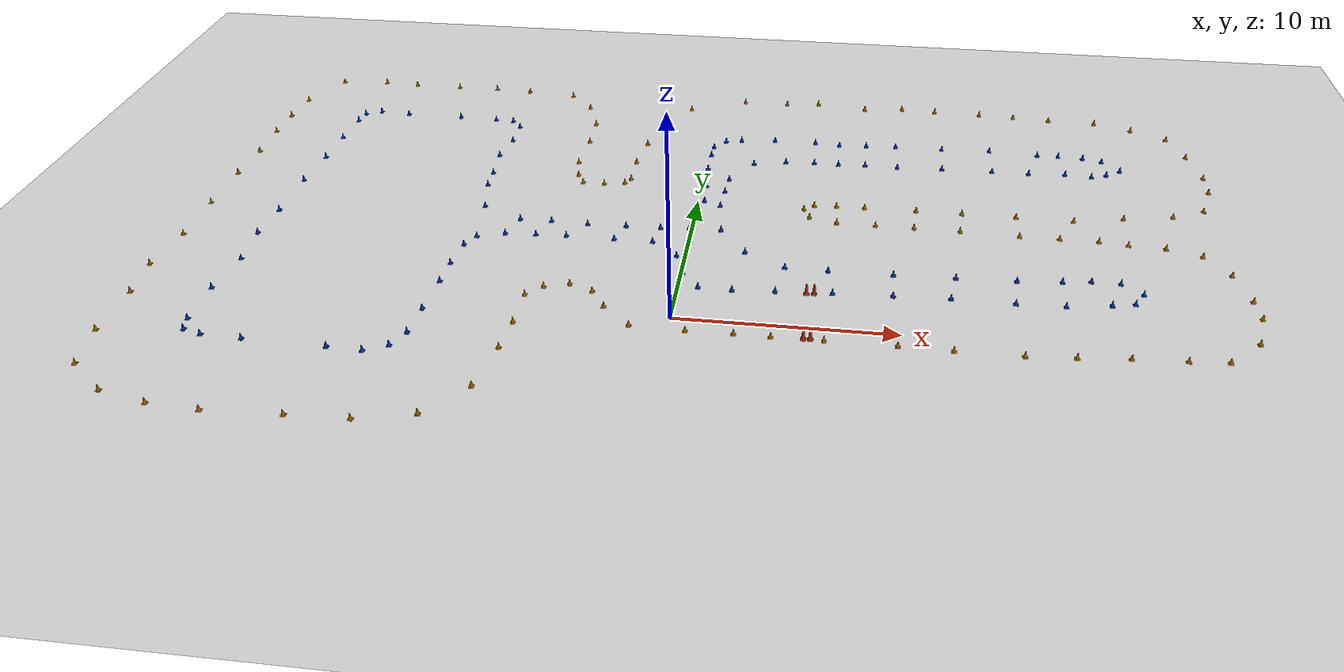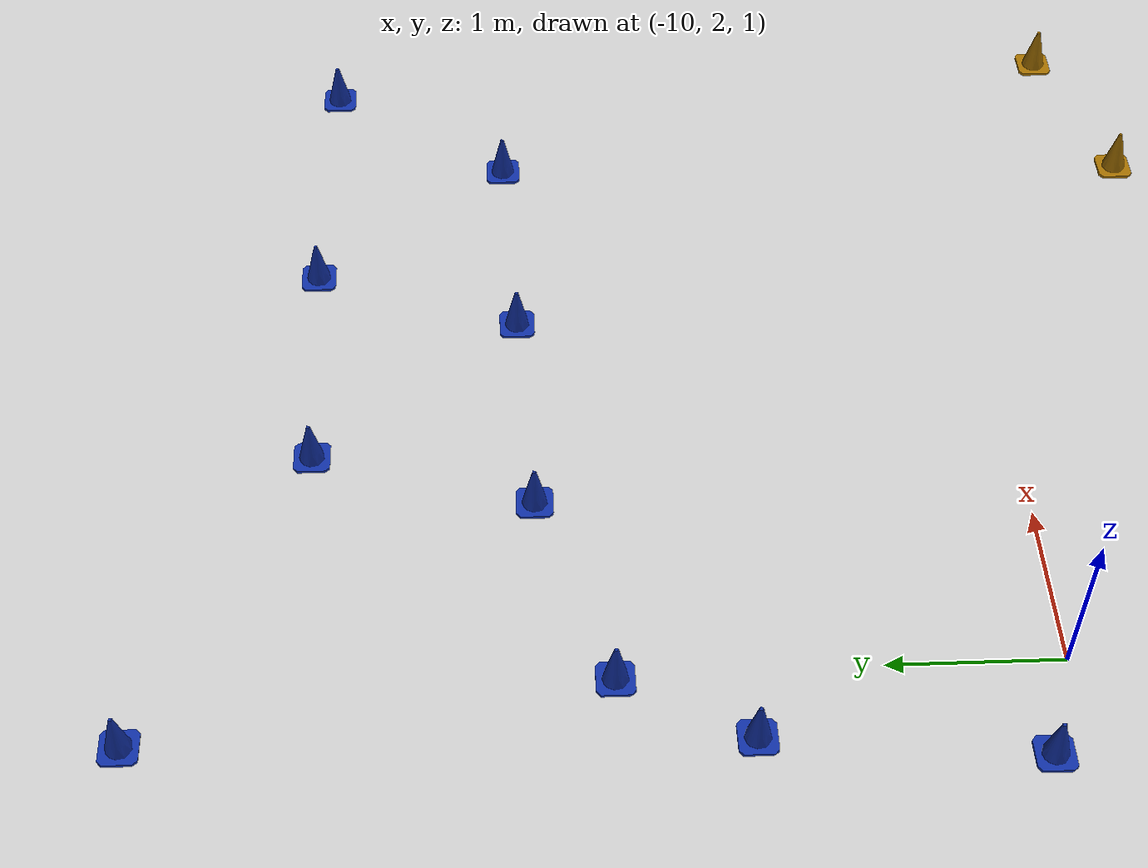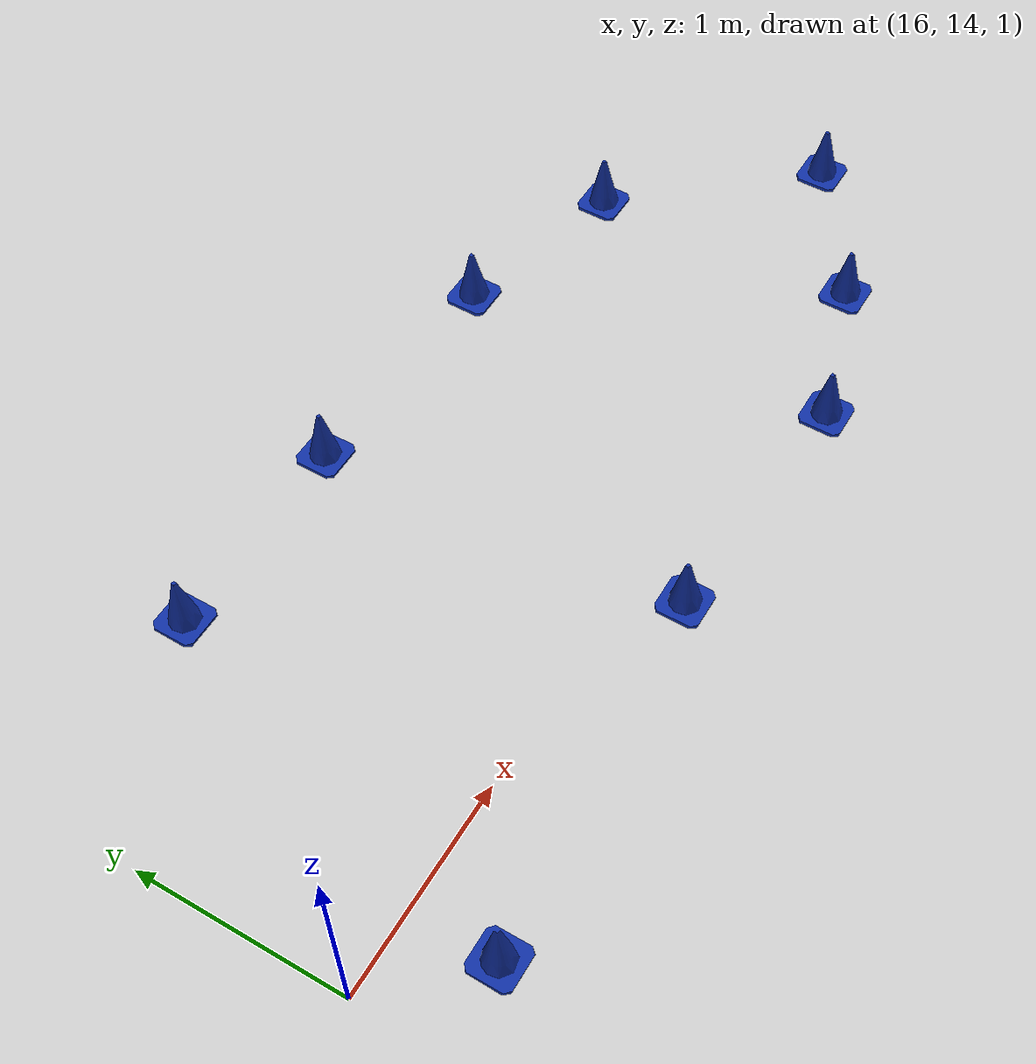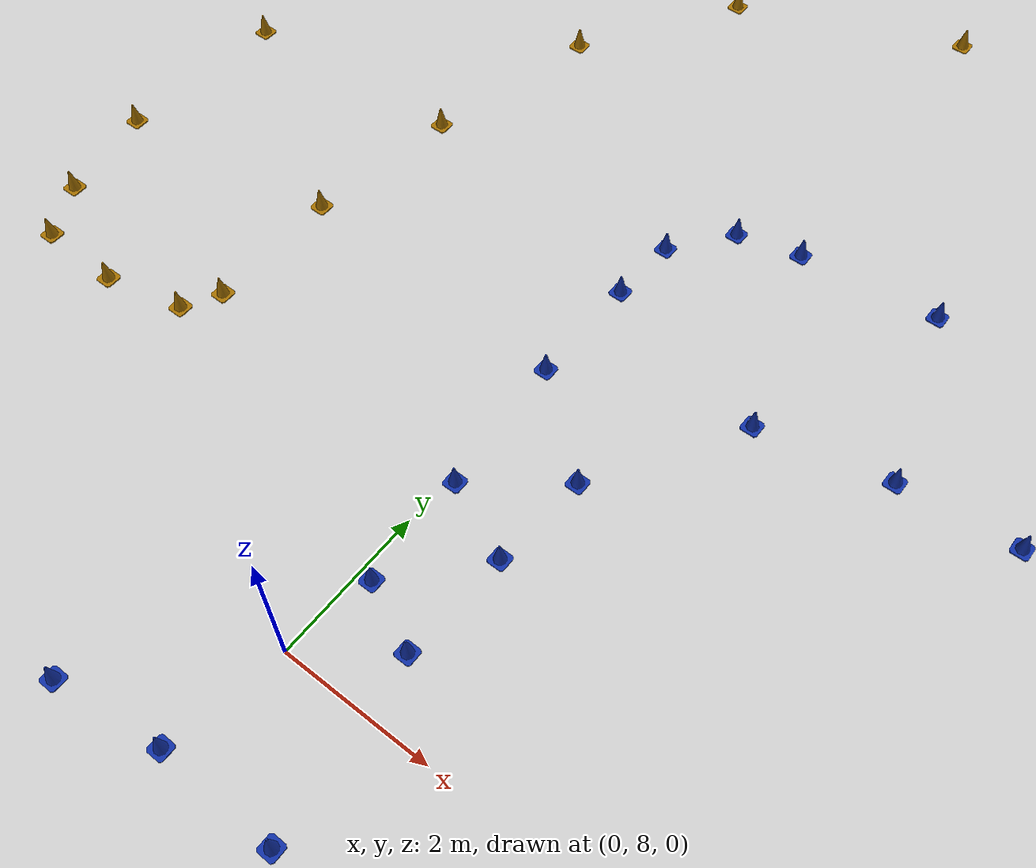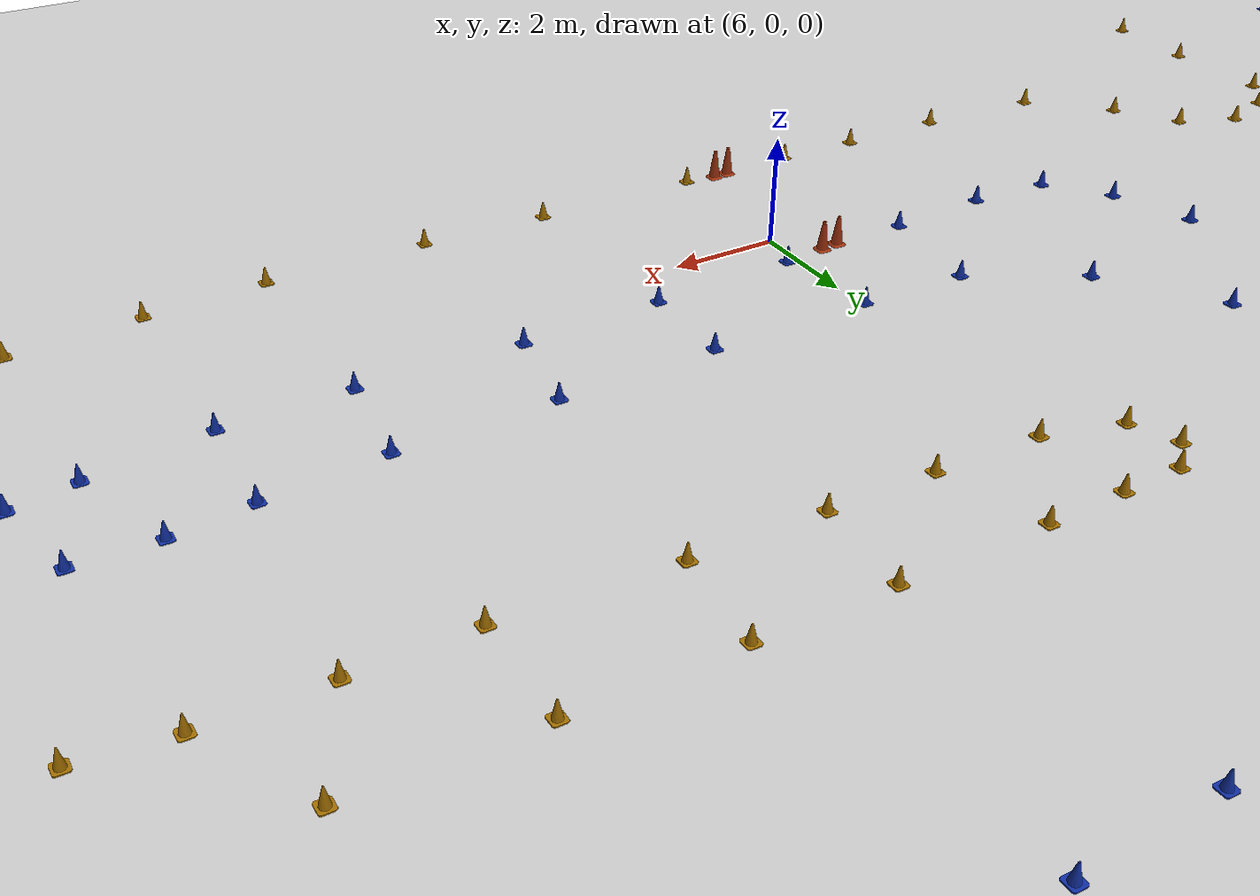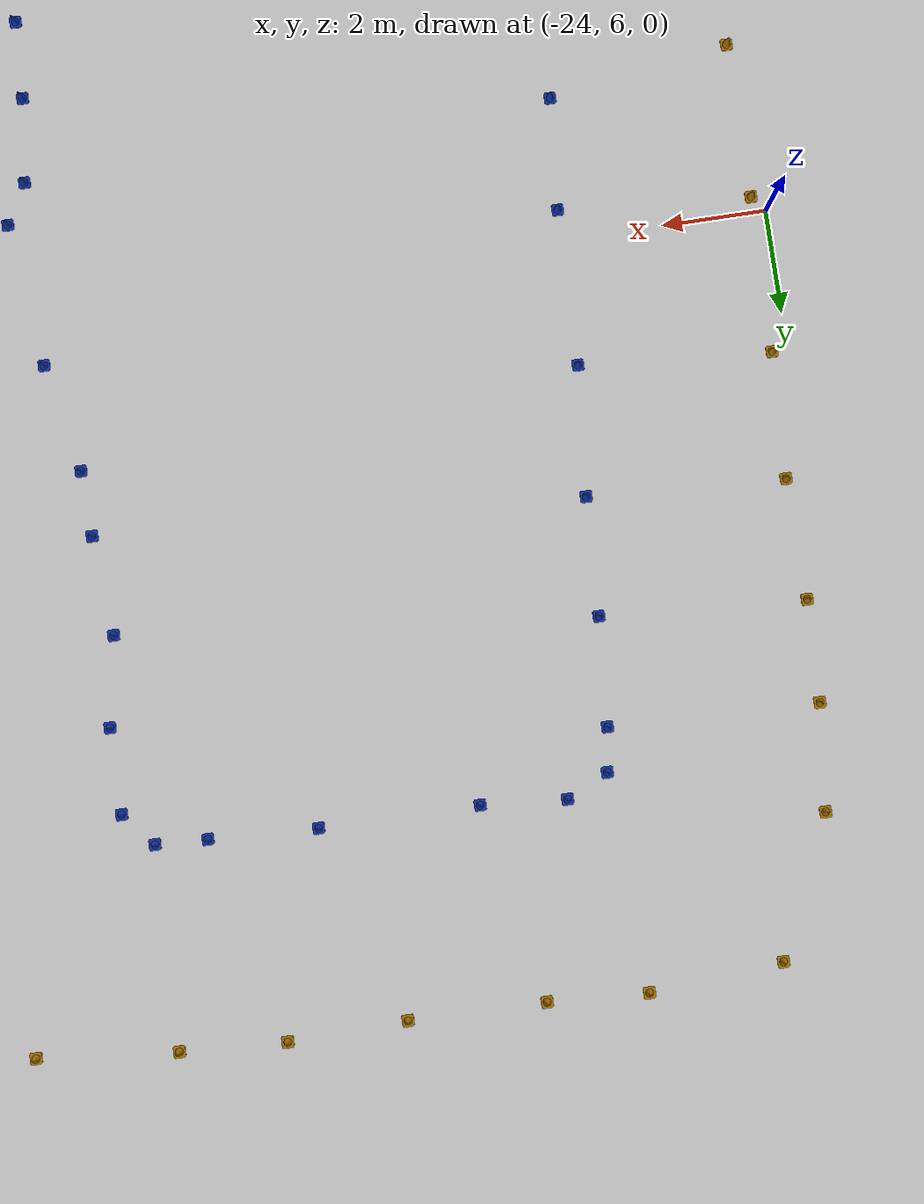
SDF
<sdf version='1.6'>
  <world name='garden_light'>
    <gui fullscreen='0'>
      <camera name='user_camera'>
        <pose frame=''>-40 40 20 0 0.667643 -1</pose>
        <view_controller>orbit</view_controller>
        <projection_type>perspective</projection_type>
      </camera>
    </gui>

    <!-- WORLD SETTINGS -->
    <scene>
      <ambient>1.0 1.0 1.0 1.0</ambient>
      <shadows>false</shadows>
    </scene>

    <spherical_coordinates>
      <heading_deg>180</heading_deg>

      <!-- Appleton Tower coordinates -->
      <latitude_deg>-27.69056</latitude_deg>
      <longitude_deg>152.65461</longitude_deg>
    </spherical_coordinates>

    <light name='sun' type='directional'>
      <cast_shadows>1</cast_shadows>
      <pose frame=''>0 0 10 0 -0 0</pose>
      <diffuse>0.8 0.8 0.8 1</diffuse>
      <specular>0.1 0.1 0.1 1</specular>
      <attenuation>
        <range>1000</range>
        <constant>0.9</constant>
        <linear>0.01</linear>
        <quadratic>0.001</quadratic>
      </attenuation>
      <direction>-0.5 0.5 -1</direction>
    </light>

    <!-- MODELS -->
    <include>
      <uri>model://ground_plane</uri>
      <pose>0.0 0.0 0.0 0 0 0</pose>
    </include>

    <include>
      <uri>model://garden_light</uri>
      <pose>0 0 0.5 0 0 0</pose>
    </include>

  </world>
</sdf>

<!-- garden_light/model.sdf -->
<sdf version='1.6'>
  <model name='track'>

    <include>
      <pose>6.957009191006661 1.7661455772327097 0.15 0 0 0</pose>
      <uri>model://blue_cone</uri>
      <name>blue_cone_0</name>

      <covariance x="0.000196" y="0.000196" xy="0.0"/>

    </include>

    <include>
      <pose>9.59576527314685 1.8942519368069928 0.15 0 0 0</pose>
      <uri>model://blue_cone</uri>
      <name>blue_cone_1</name>

      <covariance x="0.000196" y="0.000196" xy="0.0"/>

    </include>

    <include>
      <pose>12.10823694949823 2.0093814993597223 0.15 0 0 0</pose>
      <uri>model://blue_cone</uri>
      <name>blue_cone_2</name>

      <covariance x="0.000196" y="0.000196" xy="0.0"/>

    </include>

    <include>
      <pose>14.883948178031549 1.9565085719230644 0.15 0 0 0</pose>
      <uri>model://blue_cone</uri>
      <name>blue_cone_3</name>

      <covariance x="0.000196" y="0.000196" xy="0.0"/>

    </include>

    <include>
      <pose>17.021855202365856 2.015796742172749 0.15 0 0 0</pose>
      <uri>model://blue_cone</uri>
      <name>blue_cone_4</name>

      <covariance x="0.000196" y="0.000196" xy="0.0"/>

    </include>

    <include>
      <pose>19.008038251837696 2.3305962011538157 0.15 0 0 0</pose>
      <uri>model://blue_cone</uri>
      <name>blue_cone_5</name>

      <covariance x="0.000196" y="0.000196" xy="0.0"/>

    </include>

    <include>
      <pose>20.029941897847724 2.534842764762044 0.15 0 0 0</pose>
      <uri>model://blue_cone</uri>
      <name>blue_cone_6</name>

      <covariance x="0.000196" y="0.000196" xy="0.0"/>

    </include>

    <include>
      <pose>20.50598591377573 3.328676580011245 0.15 0 0 0</pose>
      <uri>model://blue_cone</uri>
      <name>blue_cone_7</name>

      <covariance x="0.000196" y="0.000196" xy="0.0"/>

    </include>

    <include>
      <pose>19.633702195632488 4.0618799751194254 0.15 0 0 0</pose>
      <uri>model://blue_cone</uri>
      <name>blue_cone_8</name>

      <covariance x="0.000196" y="0.000196" xy="0.0"/>

    </include>

    <include>
      <pose>18.35423811537148 4.087877695840995 0.15 0 0 0</pose>
      <uri>model://blue_cone</uri>
      <name>blue_cone_9</name>

      <covariance x="0.000196" y="0.000196" xy="0.0"/>

    </include>

    <include>
      <pose>17.07616909674042 3.913780944217241 0.15 0 0 0</pose>
      <uri>model://blue_cone</uri>
      <name>blue_cone_10</name>

      <covariance x="0.000196" y="0.000196" xy="0.0"/>

    </include>

    <include>
      <pose>15.072282970355577 3.719336407068008 0.15 0 0 0</pose>
      <uri>model://blue_cone</uri>
      <name>blue_cone_11</name>

      <covariance x="0.000196" y="0.000196" xy="0.0"/>

    </include>

    <include>
      <pose>12.385046646757152 3.643453732803824 0.15 0 0 0</pose>
      <uri>model://blue_cone</uri>
      <name>blue_cone_12</name>

      <covariance x="0.000196" y="0.000196" xy="0.0"/>

    </include>

    <include>
      <pose>9.617586998319249 3.552511231982513 0.15 0 0 0</pose>
      <uri>model://blue_cone</uri>
      <name>blue_cone_13</name>

      <covariance x="0.000196" y="0.000196" xy="0.0"/>

    </include>

    <include>
      <pose>6.699098966225194 3.519471497552272 0.15 0 0 0</pose>
      <uri>model://blue_cone</uri>
      <name>blue_cone_14</name>

      <covariance x="0.000196" y="0.000196" xy="0.0"/>

    </include>

    <include>
      <pose>4.739935329515152 3.555067345863401 0.15 0 0 0</pose>
      <uri>model://blue_cone</uri>
      <name>blue_cone_15</name>

      <covariance x="0.000196" y="0.000196" xy="0.0"/>

    </include>

    <include>
      <pose>2.838612925177313 4.611332770945694 0.15 0 0 0</pose>
      <uri>model://blue_cone</uri>
      <name>blue_cone_16</name>

      <covariance x="0.000196" y="0.000196" xy="0.0"/>

    </include>

    <include>
      <pose>1.5352152073704977 6.384805622912811 0.15 0 0 0</pose>
      <uri>model://blue_cone</uri>
      <name>blue_cone_17</name>

      <covariance x="0.000196" y="0.000196" xy="0.0"/>

    </include>

    <include>
      <pose>1.2575741186359668 8.611594736145097 0.15 0 0 0</pose>
      <uri>model://blue_cone</uri>
      <name>blue_cone_18</name>

      <covariance x="0.000196" y="0.000196" xy="0.0"/>

    </include>

    <include>
      <pose>1.3336621795997932 10.000720718687148 0.15 0 0 0</pose>
      <uri>model://blue_cone</uri>
      <name>blue_cone_19</name>

      <covariance x="0.000196" y="0.000196" xy="0.0"/>

    </include>

    <include>
      <pose>1.4217702344604852 11.236785568586727 0.15 0 0 0</pose>
      <uri>model://blue_cone</uri>
      <name>blue_cone_20</name>

      <covariance x="0.000196" y="0.000196" xy="0.0"/>

    </include>

    <include>
      <pose>2.525308431112676 13.027874470897508 0.15 0 0 0</pose>
      <uri>model://blue_cone</uri>
      <name>blue_cone_21</name>

      <covariance x="0.000196" y="0.000196" xy="0.0"/>

    </include>

    <include>
      <pose>4.149379203027716 13.372368064768851 0.15 0 0 0</pose>
      <uri>model://blue_cone</uri>
      <name>blue_cone_22</name>

      <covariance x="0.000196" y="0.000196" xy="0.0"/>

    </include>

    <include>
      <pose>5.611378833811353 13.487689052732511 0.15 0 0 0</pose>
      <uri>model://blue_cone</uri>
      <name>blue_cone_23</name>

      <covariance x="0.000196" y="0.000196" xy="0.0"/>

    </include>

    <include>
      <pose>6.85491876464856 13.447261364624788 0.15 0 0 0</pose>
      <uri>model://blue_cone</uri>
      <name>blue_cone_24</name>

      <covariance x="0.000196" y="0.000196" xy="0.0"/>

    </include>

    <include>
      <pose>8.223066788830103 13.580509514855972 0.15 0 0 0</pose>
      <uri>model://blue_cone</uri>
      <name>blue_cone_25</name>

      <covariance x="0.000196" y="0.000196" xy="0.0"/>

    </include>

    <include>
      <pose>9.869546792987837 13.510953324735198 0.15 0 0 0</pose>
      <uri>model://blue_cone</uri>
      <name>blue_cone_26</name>

      <covariance x="0.000196" y="0.000196" xy="0.0"/>

    </include>

    <include>
      <pose>12.143084551935544 13.63592700091243 0.15 0 0 0</pose>
      <uri>model://blue_cone</uri>
      <name>blue_cone_27</name>

      <covariance x="0.000196" y="0.000196" xy="0.0"/>

    </include>

    <include>
      <pose>14.677592003070933 13.672619515889892 0.15 0 0 0</pose>
      <uri>model://blue_cone</uri>
      <name>blue_cone_28</name>

      <covariance x="0.000196" y="0.000196" xy="0.0"/>

    </include>

    <include>
      <pose>16.516562728334918 13.679898763276771 0.15 0 0 0</pose>
      <uri>model://blue_cone</uri>
      <name>blue_cone_29</name>

      <covariance x="0.000196" y="0.000196" xy="0.0"/>

    </include>

    <include>
      <pose>18.354808469775385 13.836088354589522 0.15 0 0 0</pose>
      <uri>model://blue_cone</uri>
      <name>blue_cone_30</name>

      <covariance x="0.000196" y="0.000196" xy="0.0"/>

    </include>

    <include>
      <pose>19.657880755772908 13.753010164760347 0.15 0 0 0</pose>
      <uri>model://blue_cone</uri>
      <name>blue_cone_31</name>

      <covariance x="0.000196" y="0.000196" xy="0.0"/>

    </include>

    <include>
      <pose>20.42339581099055 14.00928813790043 0.15 0 0 0</pose>
      <uri>model://blue_cone</uri>
      <name>blue_cone_32</name>

      <covariance x="0.000196" y="0.000196" xy="0.0"/>

    </include>

    <include>
      <pose>21.166702925964465 14.495073932137622 0.15 0 0 0</pose>
      <uri>model://blue_cone</uri>
      <name>blue_cone_33</name>

      <covariance x="0.000196" y="0.000196" xy="0.0"/>

    </include>

    <include>
      <pose>20.37631535168097 15.411937071497366 0.15 0 0 0</pose>
      <uri>model://blue_cone</uri>
      <name>blue_cone_34</name>

      <covariance x="0.000196" y="0.000196" xy="0.0"/>

    </include>

    <include>
      <pose>19.453919607671185 15.651890691817044 0.15 0 0 0</pose>
      <uri>model://blue_cone</uri>
      <name>blue_cone_35</name>

      <covariance x="0.000196" y="0.000196" xy="0.0"/>

    </include>

    <include>
      <pose>18.222142223091478 15.714669141352497 0.15 0 0 0</pose>
      <uri>model://blue_cone</uri>
      <name>blue_cone_36</name>

      <covariance x="0.000196" y="0.000196" xy="0.0"/>

    </include>

    <include>
      <pose>17.144748566206665 15.720409028194492 0.15 0 0 0</pose>
      <uri>model://blue_cone</uri>
      <name>blue_cone_37</name>

      <covariance x="0.000196" y="0.000196" xy="0.0"/>

    </include>

    <include>
      <pose>14.68459750361897 15.874685292027106 0.15 0 0 0</pose>
      <uri>model://blue_cone</uri>
      <name>blue_cone_38</name>

      <covariance x="0.000196" y="0.000196" xy="0.0"/>

    </include>

    <include>
      <pose>12.217423868785088 15.756740257379594 0.15 0 0 0</pose>
      <uri>model://blue_cone</uri>
      <name>blue_cone_39</name>

      <covariance x="0.000196" y="0.000196" xy="0.0"/>

    </include>

    <include>
      <pose>9.797473615214669 15.751449011578051 0.15 0 0 0</pose>
      <uri>model://blue_cone</uri>
      <name>blue_cone_40</name>

      <covariance x="0.000196" y="0.000196" xy="0.0"/>

    </include>

    <include>
      <pose>8.254531661002847 15.672351546216303 0.15 0 0 0</pose>
      <uri>model://blue_cone</uri>
      <name>blue_cone_41</name>

      <covariance x="0.000196" y="0.000196" xy="0.0"/>

    </include>

    <include>
      <pose>6.842001169898641 15.556483223195558 0.15 0 0 0</pose>
      <uri>model://blue_cone</uri>
      <name>blue_cone_42</name>

      <covariance x="0.000196" y="0.000196" xy="0.0"/>

    </include>

    <include>
      <pose>5.572730963168121 15.669896521206985 0.15 0 0 0</pose>
      <uri>model://blue_cone</uri>
      <name>blue_cone_43</name>

      <covariance x="0.000196" y="0.000196" xy="0.0"/>

    </include>

    <include>
      <pose>3.4265173292726514 15.666571111015289 0.15 0 0 0</pose>
      <uri>model://blue_cone</uri>
      <name>blue_cone_44</name>

      <covariance x="0.000196" y="0.000196" xy="0.0"/>

    </include>

    <include>
      <pose>1.6445775315068127 15.484455541310265 0.15 0 0 0</pose>
      <uri>model://blue_cone</uri>
      <name>blue_cone_45</name>

      <covariance x="0.000196" y="0.000196" xy="0.0"/>

    </include>

    <include>
      <pose>0.838205046554946 15.28368838495713 0.15 0 0 0</pose>
      <uri>model://blue_cone</uri>
      <name>blue_cone_46</name>

      <covariance x="0.000196" y="0.000196" xy="0.0"/>

    </include>

    <include>
      <pose>0.2750412092852636 14.551948233429387 0.15 0 0 0</pose>
      <uri>model://blue_cone</uri>
      <name>blue_cone_47</name>

      <covariance x="0.000196" y="0.000196" xy="0.0"/>

    </include>

    <include>
      <pose>0.2319583685071746 13.666506107556694 0.15 0 0 0</pose>
      <uri>model://blue_cone</uri>
      <name>blue_cone_48</name>

      <covariance x="0.000196" y="0.000196" xy="0.0"/>

    </include>

    <include>
      <pose>0.2233641112741153 12.216913349119617 0.15 0 0 0</pose>
      <uri>model://blue_cone</uri>
      <name>blue_cone_49</name>

      <covariance x="0.000196" y="0.000196" xy="0.0"/>

    </include>

    <include>
      <pose>0.3589226167892754 10.426101545271525 0.15 0 0 0</pose>
      <uri>model://blue_cone</uri>
      <name>blue_cone_50</name>

      <covariance x="0.000196" y="0.000196" xy="0.0"/>

    </include>

    <include>
      <pose>0.4316124026531422 8.987971658845172 0.15 0 0 0</pose>
      <uri>model://blue_cone</uri>
      <name>blue_cone_51</name>

      <covariance x="0.00019832" y="0.00019832" xy="0.0"/>

    </include>

    <include>
      <pose>0.0235420670018706 6.406261628392431 0.15 0 0 0</pose>
      <uri>model://blue_cone</uri>
      <name>blue_cone_52</name>

      <covariance x="0.000196" y="0.000196" xy="0.0"/>

    </include>

    <include>
      <pose>-1.3416683915724636 6.234179963474316 0.15 0 0 0</pose>
      <uri>model://blue_cone</uri>
      <name>blue_cone_53</name>

      <covariance x="0.000196" y="0.000196" xy="0.0"/>

    </include>

    <include>
      <pose>-2.995965456715407 6.197457997973169 0.15 0 0 0</pose>
      <uri>model://blue_cone</uri>
      <name>blue_cone_54</name>

      <covariance x="0.000196" y="0.000196" xy="0.0"/>

    </include>

    <include>
      <pose>-4.844396158501869 6.142427735130398 0.15 0 0 0</pose>
      <uri>model://blue_cone</uri>
      <name>blue_cone_55</name>

      <covariance x="0.000196" y="0.000196" xy="0.0"/>

    </include>

    <include>
      <pose>-6.618311854478021 6.221757153911208 0.15 0 0 0</pose>
      <uri>model://blue_cone</uri>
      <name>blue_cone_56</name>

      <covariance x="0.000196" y="0.000196" xy="0.0"/>

    </include>

    <include>
      <pose>-8.146852940266232 6.203310473409385 0.15 0 0 0</pose>
      <uri>model://blue_cone</uri>
      <name>blue_cone_57</name>

      <covariance x="0.000196" y="0.000196" xy="0.0"/>

    </include>

    <include>
      <pose>-10.144487425776084 7.167470622285265 0.15 0 0 0</pose>
      <uri>model://blue_cone</uri>
      <name>blue_cone_58</name>

      <covariance x="0.000196" y="0.000196" xy="0.0"/>

    </include>

    <include>
      <pose>-10.57348709849624 9.226502131527395 0.15 0 0 0</pose>
      <uri>model://blue_cone</uri>
      <name>blue_cone_59</name>

      <covariance x="0.000196" y="0.000196" xy="0.0"/>

    </include>

    <include>
      <pose>-10.622522287672748 10.452275541360423 0.15 0 0 0</pose>
      <uri>model://blue_cone</uri>
      <name>blue_cone_60</name>

      <covariance x="0.000196" y="0.000196" xy="0.0"/>

    </include>

    <include>
      <pose>-10.781943774311744 12.323379211317482 0.15 0 0 0</pose>
      <uri>model://blue_cone</uri>
      <name>blue_cone_61</name>

      <covariance x="0.000196" y="0.000196" xy="0.0"/>

    </include>

    <include>
      <pose>-10.499182715070056 13.993663864803851 0.15 0 0 0</pose>
      <uri>model://blue_cone</uri>
      <name>blue_cone_62</name>

      <covariance x="0.000196" y="0.000196" xy="0.0"/>

    </include>

    <include>
      <pose>-10.508233823005853 15.590654049595411 0.15 0 0 0</pose>
      <uri>model://blue_cone</uri>
      <name>blue_cone_63</name>

      <covariance x="0.000196" y="0.000196" xy="0.0"/>

    </include>

    <include>
      <pose>-11.0397291486385 16.213409397641797 0.15 0 0 0</pose>
      <uri>model://blue_cone</uri>
      <name>blue_cone_64</name>

      <covariance x="0.000196" y="0.000196" xy="0.0"/>

    </include>

    <include>
      <pose>-12.007464257167644 16.257419929705126 0.15 0 0 0</pose>
      <uri>model://blue_cone</uri>
      <name>blue_cone_65</name>

      <covariance x="0.000196" y="0.000196" xy="0.0"/>

    </include>

    <include>
      <pose>-14.031982183612037 16.346442248018647 0.15 0 0 0</pose>
      <uri>model://blue_cone</uri>
      <name>blue_cone_66</name>

      <covariance x="0.000196" y="0.000196" xy="0.0"/>

    </include>

    <include>
      <pose>-17.00549629869292 16.352992420507245 0.15 0 0 0</pose>
      <uri>model://blue_cone</uri>
      <name>blue_cone_67</name>

      <covariance x="0.000196" y="0.000196" xy="0.0"/>

    </include>

    <include>
      <pose>-18.59951031150565 16.474529014874346 0.15 0 0 0</pose>
      <uri>model://blue_cone</uri>
      <name>blue_cone_68</name>

      <covariance x="0.000196" y="0.000196" xy="0.0"/>

    </include>

    <include>
      <pose>-19.39036322255952 16.096284253021164 0.15 0 0 0</pose>
      <uri>model://blue_cone</uri>
      <name>blue_cone_69</name>

      <covariance x="0.000196" y="0.000196" xy="0.0"/>

    </include>

    <include>
      <pose>-19.513534993971184 15.277920126408368 0.15 0 0 0</pose>
      <uri>model://blue_cone</uri>
      <name>blue_cone_70</name>

      <covariance x="0.000196" y="0.000196" xy="0.0"/>

    </include>

    <include>
      <pose>-19.657157274677957 13.249938177742544 0.15 0 0 0</pose>
      <uri>model://blue_cone</uri>
      <name>blue_cone_71</name>

      <covariance x="0.000196" y="0.000196" xy="0.0"/>

    </include>

    <include>
      <pose>-19.74912111864295 11.028169829184003 0.15 0 0 0</pose>
      <uri>model://blue_cone</uri>
      <name>blue_cone_72</name>

      <covariance x="0.000196" y="0.000196" xy="0.0"/>

    </include>

    <include>
      <pose>-19.95905755925305 8.575673605407978 0.15 0 0 0</pose>
      <uri>model://blue_cone</uri>
      <name>blue_cone_73</name>

      <covariance x="0.000196" y="0.000196" xy="0.0"/>

    </include>

    <include>
      <pose>-20.009657866219325 5.619159230781801 0.15 0 0 0</pose>
      <uri>model://blue_cone</uri>
      <name>blue_cone_74</name>

      <covariance x="0.000196" y="0.000196" xy="0.0"/>

    </include>

    <include>
      <pose>-20.179012461103003 3.4901422911655477 0.15 0 0 0</pose>
      <uri>model://blue_cone</uri>
      <name>blue_cone_75</name>

      <covariance x="0.000196" y="0.000196" xy="0.0"/>

    </include>

    <include>
      <pose>-19.99756359034369 1.2730973565302186 0.15 0 0 0</pose>
      <uri>model://blue_cone</uri>
      <name>blue_cone_76</name>

      <covariance x="0.000196" y="0.000196" xy="0.0"/>

    </include>

    <include>
      <pose>-20.285063102926813 -1.1209363223802349 0.15 0 0 0</pose>
      <uri>model://blue_cone</uri>
      <name>blue_cone_77</name>

      <covariance x="0.000196" y="0.000196" xy="0.0"/>

    </include>

    <include>
      <pose>-20.265204106914148 -3.448531078182935 0.15 0 0 0</pose>
      <uri>model://blue_cone</uri>
      <name>blue_cone_78</name>

      <covariance x="0.000196" y="0.000196" xy="0.0"/>

    </include>

    <include>
      <pose>-20.080445689443515 -4.187639752847309 0.15 0 0 0</pose>
      <uri>model://blue_cone</uri>
      <name>blue_cone_79</name>

      <covariance x="0.000196" y="0.000196" xy="0.0"/>

    </include>

    <include>
      <pose>-19.220317258041668 -4.453717047218014 0.15 0 0 0</pose>
      <uri>model://blue_cone</uri>
      <name>blue_cone_80</name>

      <covariance x="0.000196" y="0.000196" xy="0.0"/>

    </include>

    <include>
      <pose>-17.39130264801283 -4.51460802356824 0.15 0 0 0</pose>
      <uri>model://blue_cone</uri>
      <name>blue_cone_81</name>

      <covariance x="0.000196" y="0.000196" xy="0.0"/>

    </include>

    <include>
      <pose>-13.66893728120042 -4.618166054952659 0.15 0 0 0</pose>
      <uri>model://blue_cone</uri>
      <name>blue_cone_82</name>

      <covariance x="0.000196" y="0.000196" xy="0.0"/>

    </include>

    <include>
      <pose>-12.102563870225218 -4.694285183031 0.15 0 0 0</pose>
      <uri>model://blue_cone</uri>
      <name>blue_cone_83</name>

      <covariance x="0.000196" y="0.000196" xy="0.0"/>

    </include>

    <include>
      <pose>-11.121962995690389 -4.199581801302178 0.15 0 0 0</pose>
      <uri>model://blue_cone</uri>
      <name>blue_cone_84</name>

      <covariance x="0.000196" y="0.000196" xy="0.0"/>

    </include>

    <include>
      <pose>-10.670617011881903 -3.2431832155256 0.15 0 0 0</pose>
      <uri>model://blue_cone</uri>
      <name>blue_cone_85</name>

      <covariance x="0.000196" y="0.000196" xy="0.0"/>

    </include>

    <include>
      <pose>-10.559889121208196 -1.5076246926038026 0.15 0 0 0</pose>
      <uri>model://blue_cone</uri>
      <name>blue_cone_86</name>

      <covariance x="0.000196" y="0.000196" xy="0.0"/>

    </include>

    <include>
      <pose>-10.43009134530362 0.6041451067653414 0.15 0 0 0</pose>
      <uri>model://blue_cone</uri>
      <name>blue_cone_87</name>

      <covariance x="0.000196" y="0.000196" xy="0.0"/>

    </include>

    <include>
      <pose>-10.378239663757856 2.0790643806970337 0.15 0 0 0</pose>
      <uri>model://blue_cone</uri>
      <name>blue_cone_88</name>

      <covariance x="0.000196" y="0.000196" xy="0.0"/>

    </include>

    <include>
      <pose>-10.214378402536797 3.6836061437056937 0.15 0 0 0</pose>
      <uri>model://blue_cone</uri>
      <name>blue_cone_89</name>

      <covariance x="0.000196" y="0.000196" xy="0.0"/>

    </include>

    <include>
      <pose>-9.807736832126052 4.440536442646129 0.15 0 0 0</pose>
      <uri>model://blue_cone</uri>
      <name>blue_cone_90</name>

      <covariance x="0.000196" y="0.000196" xy="0.0"/>

    </include>

    <include>
      <pose>-8.546032765747594 4.855555001965783 0.15 0 0 0</pose>
      <uri>model://blue_cone</uri>
      <name>blue_cone_91</name>

      <covariance x="0.000196" y="0.000196" xy="0.0"/>

    </include>

    <include>
      <pose>-7.086140521417018 4.927152135255657 0.15 0 0 0</pose>
      <uri>model://blue_cone</uri>
      <name>blue_cone_92</name>

      <covariance x="0.000196" y="0.000196" xy="0.0"/>

    </include>

    <include>
      <pose>-5.640558575483428 4.991919107149455 0.15 0 0 0</pose>
      <uri>model://blue_cone</uri>
      <name>blue_cone_93</name>

      <covariance x="0.000196" y="0.000196" xy="0.0"/>

    </include>

    <include>
      <pose>-3.347263976765856 4.9876735861986665 0.15 0 0 0</pose>
      <uri>model://blue_cone</uri>
      <name>blue_cone_94</name>

      <covariance x="0.000196" y="0.000196" xy="0.0"/>

    </include>

    <include>
      <pose>-1.53093363189147 4.975864310965672 0.15 0 0 0</pose>
      <uri>model://blue_cone</uri>
      <name>blue_cone_95</name>

      <covariance x="0.000196" y="0.000196" xy="0.0"/>

    </include>

    <include>
      <pose>-0.249083113434632 3.912815193948146 0.15 0 0 0</pose>
      <uri>model://blue_cone</uri>
      <name>blue_cone_96</name>

      <covariance x="0.000196" y="0.000196" xy="0.0"/>

    </include>

    <include>
      <pose>0.2181600783712749 2.538827638183351 0.15 0 0 0</pose>
      <uri>model://blue_cone</uri>
      <name>blue_cone_97</name>

      <covariance x="0.000196" y="0.000196" xy="0.0"/>

    </include>

    <include>
      <pose>1.0280175987962377 1.5533059264295086 0.15 0 0 0</pose>
      <uri>model://blue_cone</uri>
      <name>blue_cone_98</name>

      <covariance x="0.000196" y="0.000196" xy="0.0"/>

    </include>

    <include>
      <pose>2.547095667179877 1.484213028221444 0.15 0 0 0</pose>
      <uri>model://blue_cone</uri>
      <name>blue_cone_99</name>

      <covariance x="0.000196" y="0.000196" xy="0.0"/>

    </include>

    <include>
      <pose>4.442580369282853 1.6162912186708145 0.15 0 0 0</pose>
      <uri>model://blue_cone</uri>
      <name>blue_cone_100</name>

      <covariance x="0.000196" y="0.000196" xy="0.0"/>

    </include>

    <include>
      <pose>6.72418299866692 -1.7147797047163862 0.15 0 0 0</pose>
      <uri>model://yellow_cone</uri>
      <name>yellow_cone_101</name>

      <covariance x="0.000196" y="0.000196" xy="0.0"/>

    </include>

    <include>
      <pose>9.765094775093896 -1.706933535438008 0.15 0 0 0</pose>
      <uri>model://yellow_cone</uri>
      <name>yellow_cone_102</name>

      <covariance x="0.000196" y="0.000196" xy="0.0"/>

    </include>

    <include>
      <pose>12.056018267986298 -1.763416387225742 0.15 0 0 0</pose>
      <uri>model://yellow_cone</uri>
      <name>yellow_cone_103</name>

      <covariance x="0.000196" y="0.000196" xy="0.0"/>

    </include>

    <include>
      <pose>14.923037285573251 -1.7519047548588933 0.15 0 0 0</pose>
      <uri>model://yellow_cone</uri>
      <name>yellow_cone_104</name>

      <covariance x="0.000196" y="0.000196" xy="0.0"/>

    </include>

    <include>
      <pose>17.024163650294405 -1.6032942002329595 0.15 0 0 0</pose>
      <uri>model://yellow_cone</uri>
      <name>yellow_cone_105</name>

      <covariance x="0.000196" y="0.000196" xy="0.0"/>

    </include>

    <include>
      <pose>19.21909820918137 -1.40920171655723 0.15 0 0 0</pose>
      <uri>model://yellow_cone</uri>
      <name>yellow_cone_106</name>

      <covariance x="0.000196" y="0.000196" xy="0.0"/>

    </include>

    <include>
      <pose>21.49894800729537 -1.2923439669060155 0.15 0 0 0</pose>
      <uri>model://yellow_cone</uri>
      <name>yellow_cone_107</name>

      <covariance x="0.000196" y="0.000196" xy="0.0"/>

    </include>

    <include>
      <pose>23.17150333750053 -1.1787150847534456 0.15 0 0 0</pose>
      <uri>model://yellow_cone</uri>
      <name>yellow_cone_108</name>

      <covariance x="0.000196" y="0.000196" xy="0.0"/>

    </include>

    <include>
      <pose>24.67342462153555 0.2456868975535648 0.15 0 0 0</pose>
      <uri>model://yellow_cone</uri>
      <name>yellow_cone_109</name>

      <covariance x="0.000196" y="0.000196" xy="0.0"/>

    </include>

    <include>
      <pose>25.208959361985222 2.09382660475126 0.15 0 0 0</pose>
      <uri>model://yellow_cone</uri>
      <name>yellow_cone_110</name>

      <covariance x="0.000196" y="0.000196" xy="0.0"/>

    </include>

    <include>
      <pose>25.13044283563829 3.3612594219638714 0.15 0 0 0</pose>
      <uri>model://yellow_cone</uri>
      <name>yellow_cone_111</name>

      <covariance x="0.000196" y="0.000196" xy="0.0"/>

    </include>

    <include>
      <pose>24.675072108241984 5.330332790966717 0.15 0 0 0</pose>
      <uri>model://yellow_cone</uri>
      <name>yellow_cone_112</name>

      <covariance x="0.000196" y="0.000196" xy="0.0"/>

    </include>

    <include>
      <pose>23.706488512537923 6.769656707325942 0.15 0 0 0</pose>
      <uri>model://yellow_cone</uri>
      <name>yellow_cone_113</name>

      <covariance x="0.000196" y="0.000196" xy="0.0"/>

    </include>

    <include>
      <pose>22.15753434092092 7.265069959272519 0.15 0 0 0</pose>
      <uri>model://yellow_cone</uri>
      <name>yellow_cone_114</name>

      <covariance x="0.000196" y="0.000196" xy="0.0"/>

    </include>

    <include>
      <pose>20.47740536930825 7.367464278077095 0.15 0 0 0</pose>
      <uri>model://yellow_cone</uri>
      <name>yellow_cone_115</name>

      <covariance x="0.000196" y="0.000196" xy="0.0"/>

    </include>

    <include>
      <pose>19.165613525744515 7.513359628549159 0.15 0 0 0</pose>
      <uri>model://yellow_cone</uri>
      <name>yellow_cone_116</name>

      <covariance x="0.000196" y="0.000196" xy="0.0"/>

    </include>

    <include>
      <pose>17.369811749051028 7.534970006550919 0.15 0 0 0</pose>
      <uri>model://yellow_cone</uri>
      <name>yellow_cone_117</name>

      <covariance x="0.000196" y="0.000196" xy="0.0"/>

    </include>

    <include>
      <pose>15.51796094453579 7.514715853539737 0.15 0 0 0</pose>
      <uri>model://yellow_cone</uri>
      <name>yellow_cone_118</name>

      <covariance x="0.000196" y="0.000196" xy="0.0"/>

    </include>

    <include>
      <pose>12.768292339333598 7.6524136177197235 0.15 0 0 0</pose>
      <uri>model://yellow_cone</uri>
      <name>yellow_cone_119</name>

      <covariance x="0.000196" y="0.000196" xy="0.0"/>

    </include>

    <include>
      <pose>10.60750710678035 7.672330400684938 0.15 0 0 0</pose>
      <uri>model://yellow_cone</uri>
      <name>yellow_cone_120</name>

      <covariance x="0.000196" y="0.000196" xy="0.0"/>

    </include>

    <include>
      <pose>8.787901457758661 7.670278811298215 0.15 0 0 0</pose>
      <uri>model://yellow_cone</uri>
      <name>yellow_cone_121</name>

      <covariance x="0.000196" y="0.000196" xy="0.0"/>

    </include>

    <include>
      <pose>6.950400563508328 7.706610707093004 0.15 0 0 0</pose>
      <uri>model://yellow_cone</uri>
      <name>yellow_cone_122</name>

      <covariance x="0.000196" y="0.000196" xy="0.0"/>

    </include>

    <include>
      <pose>5.62948346779205 8.061183305512449 0.15 0 0 0</pose>
      <uri>model://yellow_cone</uri>
      <name>yellow_cone_123</name>

      <covariance x="0.000196" y="0.000196" xy="0.0"/>

    </include>

    <include>
      <pose>5.326674554830372 8.775555194320258 0.15 0 0 0</pose>
      <uri>model://yellow_cone</uri>
      <name>yellow_cone_124</name>

      <covariance x="0.000196" y="0.000196" xy="0.0"/>

    </include>

    <include>
      <pose>5.808208628632469 9.191268732648458 0.15 0 0 0</pose>
      <uri>model://yellow_cone</uri>
      <name>yellow_cone_125</name>

      <covariance x="0.000196" y="0.000196" xy="0.0"/>

    </include>

    <include>
      <pose>6.888251995213865 9.225855129369677 0.15 0 0 0</pose>
      <uri>model://yellow_cone</uri>
      <name>yellow_cone_126</name>

      <covariance x="0.000196" y="0.000196" xy="0.0"/>

    </include>

    <include>
      <pose>8.255613945958281 9.261247747840596 0.15 0 0 0</pose>
      <uri>model://yellow_cone</uri>
      <name>yellow_cone_127</name>

      <covariance x="0.000196" y="0.000196" xy="0.0"/>

    </include>

    <include>
      <pose>10.745458329905968 9.277520322373835 0.15 0 0 0</pose>
      <uri>model://yellow_cone</uri>
      <name>yellow_cone_128</name>

      <covariance x="0.000196" y="0.000196" xy="0.0"/>

    </include>

    <include>
      <pose>12.93029943340882 9.273659585399423 0.15 0 0 0</pose>
      <uri>model://yellow_cone</uri>
      <name>yellow_cone_129</name>

      <covariance x="0.000196" y="0.000196" xy="0.0"/>

    </include>

    <include>
      <pose>15.508787134231229 9.267467839297389 0.15 0 0 0</pose>
      <uri>model://yellow_cone</uri>
      <name>yellow_cone_130</name>

      <covariance x="0.000196" y="0.000196" xy="0.0"/>

    </include>

    <include>
      <pose>18.21057626294561 9.211986707814276 0.15 0 0 0</pose>
      <uri>model://yellow_cone</uri>
      <name>yellow_cone_131</name>

      <covariance x="0.000196" y="0.000196" xy="0.0"/>

    </include>

    <include>
      <pose>20.61745385259053 9.736666485933451 0.15 0 0 0</pose>
      <uri>model://yellow_cone</uri>
      <name>yellow_cone_132</name>

      <covariance x="0.000196" y="0.000196" xy="0.0"/>

    </include>

    <include>
      <pose>23.01139825295107 10.198600881915048 0.15 0 0 0</pose>
      <uri>model://yellow_cone</uri>
      <name>yellow_cone_133</name>

      <covariance x="0.000196" y="0.000196" xy="0.0"/>

    </include>

    <include>
      <pose>24.59748114829391 10.9417370949541 0.15 0 0 0</pose>
      <uri>model://yellow_cone</uri>
      <name>yellow_cone_134</name>

      <covariance x="0.000196" y="0.000196" xy="0.0"/>

    </include>

    <include>
      <pose>25.20549497937693 12.824993340016512 0.15 0 0 0</pose>
      <uri>model://yellow_cone</uri>
      <name>yellow_cone_135</name>

      <covariance x="0.000196" y="0.000196" xy="0.0"/>

    </include>

    <include>
      <pose>25.25140684440429 14.290417417571176 0.15 0 0 0</pose>
      <uri>model://yellow_cone</uri>
      <name>yellow_cone_136</name>

      <covariance x="0.000196" y="0.000196" xy="0.0"/>

    </include>

    <include>
      <pose>24.807360741977988 16.430630556280402 0.15 0 0 0</pose>
      <uri>model://yellow_cone</uri>
      <name>yellow_cone_137</name>

      <covariance x="0.000196" y="0.000196" xy="0.0"/>

    </include>

    <include>
      <pose>24.134266232908924 18.30987772039141 0.15 0 0 0</pose>
      <uri>model://yellow_cone</uri>
      <name>yellow_cone_138</name>

      <covariance x="0.000196" y="0.000196" xy="0.0"/>

    </include>

    <include>
      <pose>24.13778349675335 18.3223965228162 0.15 0 0 0</pose>
      <uri>model://yellow_cone</uri>
      <name>yellow_cone_139</name>

      <covariance x="0.000196" y="0.000196" xy="0.0"/>

    </include>

    <include>
      <pose>22.43392178484073 19.172111580891595 0.15 0 0 0</pose>
      <uri>model://yellow_cone</uri>
      <name>yellow_cone_140</name>

      <covariance x="0.000196" y="0.000196" xy="0.0"/>

    </include>

    <include>
      <pose>20.589523137876206 19.7717384301039 0.15 0 0 0</pose>
      <uri>model://yellow_cone</uri>
      <name>yellow_cone_141</name>

      <covariance x="0.000196" y="0.000196" xy="0.0"/>

    </include>

    <include>
      <pose>18.152726620970675 19.8385384368258 0.15 0 0 0</pose>
      <uri>model://yellow_cone</uri>
      <name>yellow_cone_142</name>

      <covariance x="0.000196" y="0.000196" xy="0.0"/>

    </include>

    <include>
      <pose>16.252428538982105 19.94522214895813 0.15 0 0 0</pose>
      <uri>model://yellow_cone</uri>
      <name>yellow_cone_143</name>

      <covariance x="0.000196" y="0.000196" xy="0.0"/>

    </include>

    <include>
      <pose>14.426960144870897 20.07728924373831 0.15 0 0 0</pose>
      <uri>model://yellow_cone</uri>
      <name>yellow_cone_144</name>

      <covariance x="0.000196" y="0.000196" xy="0.0"/>

    </include>

    <include>
      <pose>11.99380934897787 20.15443665635597 0.15 0 0 0</pose>
      <uri>model://yellow_cone</uri>
      <name>yellow_cone_145</name>

      <covariance x="0.000196" y="0.000196" xy="0.0"/>

    </include>

    <include>
      <pose>10.178142407873334 20.256435905186414 0.15 0 0 0</pose>
      <uri>model://yellow_cone</uri>
      <name>yellow_cone_146</name>

      <covariance x="0.000196" y="0.000196" xy="0.0"/>

    </include>

    <include>
      <pose>8.12620439319602 19.99600194896267 0.15 0 0 0</pose>
      <uri>model://yellow_cone</uri>
      <name>yellow_cone_147</name>

      <covariance x="0.000196" y="0.000196" xy="0.0"/>

    </include>

    <include>
      <pose>5.522500576547717 20.358739416962923 0.15 0 0 0</pose>
      <uri>model://yellow_cone</uri>
      <name>yellow_cone_148</name>

      <covariance x="0.000196" y="0.000196" xy="0.0"/>

    </include>

    <include>
      <pose>3.7814537580868457 20.141931989081165 0.15 0 0 0</pose>
      <uri>model://yellow_cone</uri>
      <name>yellow_cone_149</name>

      <covariance x="0.000196" y="0.000196" xy="0.0"/>

    </include>

    <include>
      <pose>1.4252727401821297 20.07863995038669 0.15 0 0 0</pose>
      <uri>model://yellow_cone</uri>
      <name>yellow_cone_150</name>

      <covariance x="0.000196" y="0.000196" xy="0.0"/>

    </include>

    <include>
      <pose>-1.47776834629778 18.854248106746876 0.15 0 0 0</pose>
      <uri>model://yellow_cone</uri>
      <name>yellow_cone_151</name>

      <covariance x="0.000196" y="0.000196" xy="0.0"/>

    </include>

    <include>
      <pose>-2.7635418095349067 16.824397947544192 0.15 0 0 0</pose>
      <uri>model://yellow_cone</uri>
      <name>yellow_cone_152</name>

      <covariance x="0.000196" y="0.000196" xy="0.0"/>

    </include>

    <include>
      <pose>-3.276262981958519 14.482327498271818 0.15 0 0 0</pose>
      <uri>model://yellow_cone</uri>
      <name>yellow_cone_153</name>

      <covariance x="0.000196" y="0.000196" xy="0.0"/>

    </include>

    <include>
      <pose>-3.542270599470996 12.461465126959125 0.15 0 0 0</pose>
      <uri>model://yellow_cone</uri>
      <name>yellow_cone_154</name>

      <covariance x="0.000196" y="0.000196" xy="0.0"/>

    </include>

    <include>
      <pose>-3.5194484338266285 10.710421066822027 0.15 0 0 0</pose>
      <uri>model://yellow_cone</uri>
      <name>yellow_cone_155</name>

      <covariance x="0.000196" y="0.000196" xy="0.0"/>

    </include>

    <include>
      <pose>-3.771943415390666 10.252146047710308 0.15 0 0 0</pose>
      <uri>model://yellow_cone</uri>
      <name>yellow_cone_156</name>

      <covariance x="0.000196" y="0.000196" xy="0.0"/>

    </include>

    <include>
      <pose>-4.784294435014724 10.025970240052049 0.15 0 0 0</pose>
      <uri>model://yellow_cone</uri>
      <name>yellow_cone_157</name>

      <covariance x="0.000196" y="0.000196" xy="0.0"/>

    </include>

    <include>
      <pose>-5.865030555430092 10.065387832874514 0.15 0 0 0</pose>
      <uri>model://yellow_cone</uri>
      <name>yellow_cone_158</name>

      <covariance x="0.000196" y="0.000196" xy="0.0"/>

    </include>

    <include>
      <pose>-6.245973045831239 10.759825013342557 0.15 0 0 0</pose>
      <uri>model://yellow_cone</uri>
      <name>yellow_cone_159</name>

      <covariance x="0.000196" y="0.000196" xy="0.0"/>

    </include>

    <include>
      <pose>-6.506646045994502 12.060175146628325 0.15 0 0 0</pose>
      <uri>model://yellow_cone</uri>
      <name>yellow_cone_160</name>

      <covariance x="0.000196" y="0.000196" xy="0.0"/>

    </include>

    <include>
      <pose>-6.388085171482773 14.352453994666837 0.15 0 0 0</pose>
      <uri>model://yellow_cone</uri>
      <name>yellow_cone_161</name>

      <covariance x="0.000196" y="0.000196" xy="0.0"/>

    </include>

    <include>
      <pose>-6.442611605719829 16.417836649275237 0.15 0 0 0</pose>
      <uri>model://yellow_cone</uri>
      <name>yellow_cone_162</name>

      <covariance x="0.000196" y="0.000196" xy="0.0"/>

    </include>

    <include>
      <pose>-7.149945574921109 18.337791947629043 0.15 0 0 0</pose>
      <uri>model://yellow_cone</uri>
      <name>yellow_cone_163</name>

      <covariance x="0.000196" y="0.000196" xy="0.0"/>

    </include>

    <include>
      <pose>-8.418753729932703 19.71362417004508 0.15 0 0 0</pose>
      <uri>model://yellow_cone</uri>
      <name>yellow_cone_164</name>

      <covariance x="0.000196" y="0.000196" xy="0.0"/>

    </include>

    <include>
      <pose>-10.997257629154513 19.962937275053388 0.15 0 0 0</pose>
      <uri>model://yellow_cone</uri>
      <name>yellow_cone_165</name>

      <covariance x="0.000196" y="0.000196" xy="0.0"/>

    </include>

    <include>
      <pose>-12.957234082166623 20.069557438090357 0.15 0 0 0</pose>
      <uri>model://yellow_cone</uri>
      <name>yellow_cone_166</name>

      <covariance x="0.000196" y="0.000196" xy="0.0"/>

    </include>

    <include>
      <pose>-15.161848998605835 20.004143855978228 0.15 0 0 0</pose>
      <uri>model://yellow_cone</uri>
      <name>yellow_cone_167</name>

      <covariance x="0.000196" y="0.000196" xy="0.0"/>

    </include>

    <include>
      <pose>-17.700941880858462 20.034043305607085 0.15 0 0 0</pose>
      <uri>model://yellow_cone</uri>
      <name>yellow_cone_168</name>

      <covariance x="0.000196" y="0.000196" xy="0.0"/>

    </include>

    <include>
      <pose>-19.56115219912078 20.135074749954324 0.15 0 0 0</pose>
      <uri>model://yellow_cone</uri>
      <name>yellow_cone_169</name>

      <covariance x="0.000196" y="0.000196" xy="0.0"/>

    </include>

    <include>
      <pose>-22.04904759396507 19.93496765092319 0.15 0 0 0</pose>
      <uri>model://yellow_cone</uri>
      <name>yellow_cone_170</name>

      <covariance x="0.000196" y="0.000196" xy="0.0"/>

    </include>

    <include>
      <pose>-23.22555943432472 17.373578382341698 0.15 0 0 0</pose>
      <uri>model://yellow_cone</uri>
      <name>yellow_cone_171</name>

      <covariance x="0.000196" y="0.000196" xy="0.0"/>

    </include>

    <include>
      <pose>-23.430933734888296 15.389674247979976 0.15 0 0 0</pose>
      <uri>model://yellow_cone</uri>
      <name>yellow_cone_172</name>

      <covariance x="0.000196" y="0.000196" xy="0.0"/>

    </include>

    <include>
      <pose>-23.49444900750091 13.487876036258506 0.15 0 0 0</pose>
      <uri>model://yellow_cone</uri>
      <name>yellow_cone_173</name>

      <covariance x="0.000196" y="0.000196" xy="0.0"/>

    </include>

    <include>
      <pose>-23.45460715579594 11.224910162259532 0.15 0 0 0</pose>
      <uri>model://yellow_cone</uri>
      <name>yellow_cone_174</name>

      <covariance x="0.000196" y="0.000196" xy="0.0"/>

    </include>

    <include>
      <pose>-23.563194773313448 8.837337496598163 0.15 0 0 0</pose>
      <uri>model://yellow_cone</uri>
      <name>yellow_cone_175</name>

      <covariance x="0.000196" y="0.000196" xy="0.0"/>

    </include>

    <include>
      <pose>-23.622409822955504 5.888949592280062 0.15 0 0 0</pose>
      <uri>model://yellow_cone</uri>
      <name>yellow_cone_176</name>

      <covariance x="0.000196" y="0.000196" xy="0.0"/>

    </include>

    <include>
      <pose>-23.609511247792245 2.944305067399643 0.15 0 0 0</pose>
      <uri>model://yellow_cone</uri>
      <name>yellow_cone_177</name>

      <covariance x="0.000196" y="0.000196" xy="0.0"/>

    </include>

    <include>
      <pose>-23.951360627961503 0.3648988110956352 0.15 0 0 0</pose>
      <uri>model://yellow_cone</uri>
      <name>yellow_cone_178</name>

      <covariance x="0.000196" y="0.000196" xy="0.0"/>

    </include>

    <include>
      <pose>-23.70360195351536 -1.8467514815437087 0.15 0 0 0</pose>
      <uri>model://yellow_cone</uri>
      <name>yellow_cone_179</name>

      <covariance x="0.000196" y="0.000196" xy="0.0"/>

    </include>

    <include>
      <pose>-23.743769816392188 -4.675261365250146 0.15 0 0 0</pose>
      <uri>model://yellow_cone</uri>
      <name>yellow_cone_180</name>

      <covariance x="0.000196" y="0.000196" xy="0.0"/>

    </include>

    <include>
      <pose>-23.37601769787213 -6.929884140369078 0.15 0 0 0</pose>
      <uri>model://yellow_cone</uri>
      <name>yellow_cone_181</name>

      <covariance x="0.000196" y="0.000196" xy="0.0"/>

    </include>

    <include>
      <pose>-21.533114299323188 -8.414597827001897 0.15 0 0 0</pose>
      <uri>model://yellow_cone</uri>
      <name>yellow_cone_182</name>

      <covariance x="0.000196" y="0.000196" xy="0.0"/>

    </include>

    <include>
      <pose>-19.31934491766253 -8.938531078967843 0.15 0 0 0</pose>
      <uri>model://yellow_cone</uri>
      <name>yellow_cone_183</name>

      <covariance x="0.000196" y="0.000196" xy="0.0"/>

    </include>

    <include>
      <pose>-17.038934237101763 -9.083141430611253 0.15 0 0 0</pose>
      <uri>model://yellow_cone</uri>
      <name>yellow_cone_184</name>

      <covariance x="0.000196" y="0.000196" xy="0.0"/>

    </include>

    <include>
      <pose>-13.699567316207611 -8.953596517708608 0.15 0 0 0</pose>
      <uri>model://yellow_cone</uri>
      <name>yellow_cone_185</name>

      <covariance x="0.000196" y="0.000196" xy="0.0"/>

    </include>

    <include>
      <pose>-11.051308817145504 -8.866447809660045 0.15 0 0 0</pose>
      <uri>model://yellow_cone</uri>
      <name>yellow_cone_186</name>

      <covariance x="0.000196" y="0.000196" xy="0.0"/>

    </include>

    <include>
      <pose>-8.5936636361916 -8.24975604852564 0.15 0 0 0</pose>
      <uri>model://yellow_cone</uri>
      <name>yellow_cone_187</name>

      <covariance x="0.000196" y="0.000196" xy="0.0"/>

    </include>

    <include>
      <pose>-6.997383309814971 -6.373534308436901 0.15 0 0 0</pose>
      <uri>model://yellow_cone</uri>
      <name>yellow_cone_188</name>

      <covariance x="0.000196" y="0.000196" xy="0.0"/>

    </include>

    <include>
      <pose>-6.580935013582728 -3.795360693563709 0.15 0 0 0</pose>
      <uri>model://yellow_cone</uri>
      <name>yellow_cone_189</name>

      <covariance x="0.000196" y="0.000196" xy="0.0"/>

    </include>

    <include>
      <pose>-6.439038650304699 -1.9938582443962412 0.15 0 0 0</pose>
      <uri>model://yellow_cone</uri>
      <name>yellow_cone_190</name>

      <covariance x="0.000196" y="0.000196" xy="0.0"/>

    </include>

    <include>
      <pose>-6.426618170492446 0.0422853774794749 0.15 0 0 0</pose>
      <uri>model://yellow_cone</uri>
      <name>yellow_cone_191</name>

      <covariance x="0.000196" y="0.000196" xy="0.0"/>

    </include>

    <include>
      <pose>-5.749182128858543 0.7515479259077518 0.15 0 0 0</pose>
      <uri>model://yellow_cone</uri>
      <name>yellow_cone_192</name>

      <covariance x="0.000196" y="0.000196" xy="0.0"/>

    </include>

    <include>
      <pose>-4.643771042494649 1.1013798885059305 0.15 0 0 0</pose>
      <uri>model://yellow_cone</uri>
      <name>yellow_cone_193</name>

      <covariance x="0.000196" y="0.000196" xy="0.0"/>

    </include>

    <include>
      <pose>-3.544418568784323 0.6580620775081383 0.15 0 0 0</pose>
      <uri>model://yellow_cone</uri>
      <name>yellow_cone_194</name>

      <covariance x="0.000196" y="0.000196" xy="0.0"/>

    </include>

    <include>
      <pose>-2.826059522456145 -0.4024002405287166 0.15 0 0 0</pose>
      <uri>model://yellow_cone</uri>
      <name>yellow_cone_195</name>

      <covariance x="0.000196" y="0.000196" xy="0.0"/>

    </include>

    <include>
      <pose>-1.5244427231967954 -1.6098907591041045 0.15 0 0 0</pose>
      <uri>model://yellow_cone</uri>
      <name>yellow_cone_196</name>

      <covariance x="0.000196" y="0.000196" xy="0.0"/>

    </include>

    <include>
      <pose>0.8995584107034986 -1.7264299958655418 0.15 0 0 0</pose>
      <uri>model://yellow_cone</uri>
      <name>yellow_cone_197</name>

      <covariance x="0.000196" y="0.000196" xy="0.0"/>

    </include>

    <include>
      <pose>2.938501938425606 -1.6985585390782396 0.15 0 0 0</pose>
      <uri>model://yellow_cone</uri>
      <name>yellow_cone_198</name>

      <covariance x="0.000196" y="0.000196" xy="0.0"/>

    </include>

    <include>
      <pose>4.500018003002318 -1.720126389436238 0.15 0 0 0</pose>
      <uri>model://yellow_cone</uri>
      <name>yellow_cone_199</name>

      <covariance x="0.000196" y="0.000196" xy="0.0"/>

    </include>

    <include>
      <pose>6.156733495167929 -1.645840593374608 0.15 0 0 0</pose>
      <uri>model://big_cone</uri>
      <name>big_cone_200</name>

      <covariance x="0.000196" y="0.000196" xy="0.0"/>

    </include>

    <include>
      <pose>5.861486397688598 -1.6654467485864883 0.15 0 0 0</pose>
      <uri>model://big_cone</uri>
      <name>big_cone_201</name>

      <covariance x="0.000196" y="0.000196" xy="0.0"/>

    </include>

    <include>
      <pose>5.82119235374592 1.6348514003665406 0.15 0 0 0</pose>
      <uri>model://big_cone</uri>
      <name>big_cone_202</name>

      <covariance x="0.000196" y="0.000196" xy="0.0"/>

    </include>

    <include>
      <pose>6.160587753498373 1.676435941536348 0.15 0 0 0</pose>
      <uri>model://big_cone</uri>
      <name>big_cone_203</name>

      <covariance x="0.000196" y="0.000196" xy="0.0"/>

    </include>

    <static>0</static>
    <allow_auto_disable>1</allow_auto_disable>
  </model>
</sdf>

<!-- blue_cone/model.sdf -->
<sdf version='1.6'>
  <model name='blue_cone'>
    <link name='link'>
      <pose frame=''>0 0 0 0 0 0</pose>
      <inertial>
        <inertia>
          <ixx>0.0016</ixx>
          <ixy>0</ixy>
          <ixz>0</ixz>
          <iyy>0.0016</iyy>
          <iyz>0</iyz>
          <izz>0.0010</izz>
        </inertia>
        <mass>0.45</mass>
      </inertial>
      <visual name='visual'>
        <geometry>
          <mesh>
            <uri>model://cone_blue.dae</uri>
          </mesh>
        </geometry>
        <cast_shadows>1</cast_shadows>
      </visual>
      <collision name='collision'>
        <max_contacts>3</max_contacts>
        <geometry>
          <mesh>
            <uri>model://cone_blue.dae</uri>
          </mesh>
        </geometry>
      </collision>
    </link>
  </model>
</sdf>

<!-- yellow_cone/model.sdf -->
<sdf version='1.6'>
  <model name='yellow_cone'>
    <link name='link'>
      <pose frame=''>0 0 0 0 0 0</pose>
      <inertial>
        <inertia>
          <ixx>0.0016</ixx>
          <ixy>0</ixy>
          <ixz>0</ixz>
          <iyy>0.0016</iyy>
          <iyz>0</iyz>
          <izz>0.0010</izz>
        </inertia>
        <mass>0.45</mass>
      </inertial>
      <visual name='visual'>
        <geometry>
          <mesh>
            <uri>model://cone_yellow.dae</uri>
          </mesh>
        </geometry>
        <cast_shadows>1</cast_shadows>
      </visual>
      <collision name='collision'>
        <max_contacts>3</max_contacts>
        <geometry>
          <mesh>
            <uri>model://cone_yellow.dae</uri>
          </mesh>
        </geometry>
      </collision>
    </link>
  </model>
</sdf>

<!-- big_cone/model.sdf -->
<sdf version='1.6'>
  <model name='big_cone'>
    <link name='link'>
      <pose frame=''>0 0 0 0 0 0</pose>
      <inertial>
        <inertia>
          <ixx>0.0016</ixx>
          <ixy>0</ixy>
          <ixz>0</ixz>
          <iyy>0.0016</iyy>
          <iyz>0</iyz>
          <izz>0.0010</izz>
        </inertia>
        <mass>0.45</mass>
      </inertial>
      <visual name='visual'>
        <geometry>
          <mesh>
            <uri>model://cone_big.dae</uri>
          </mesh>
        </geometry>
        <cast_shadows>1</cast_shadows>
      </visual>
      <collision name='collision'>
        <max_contacts>3</max_contacts>
        <geometry>
          <mesh>
            <uri>model://cone_big.dae</uri>
          </mesh>
        </geometry>
      </collision>
    </link>
  </model>
</sdf>
